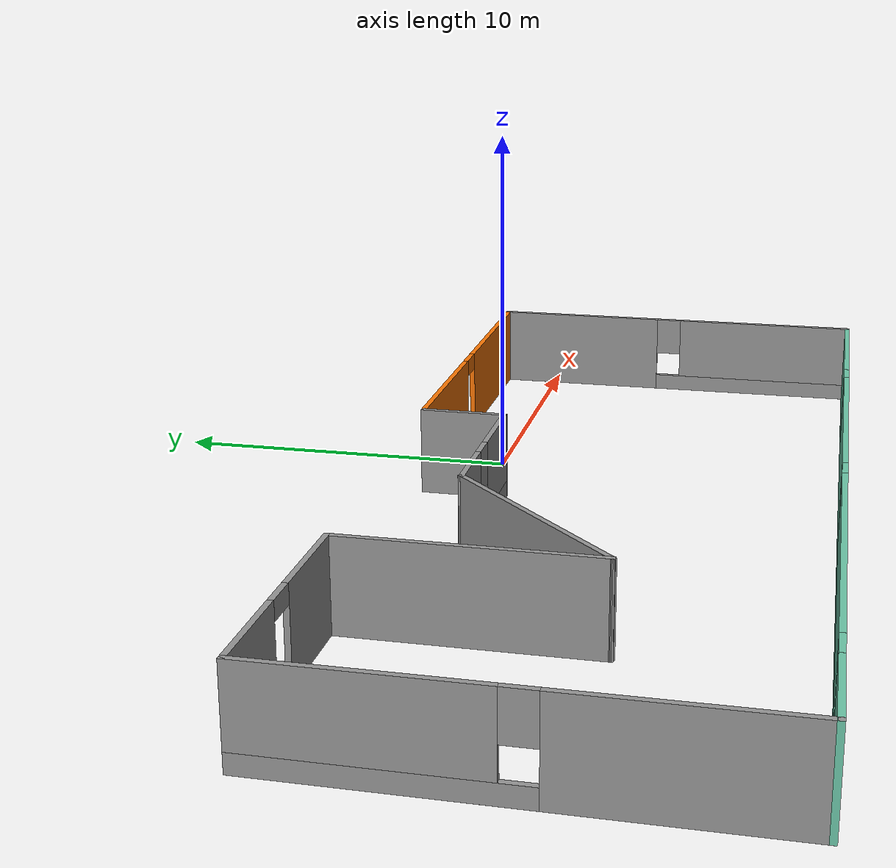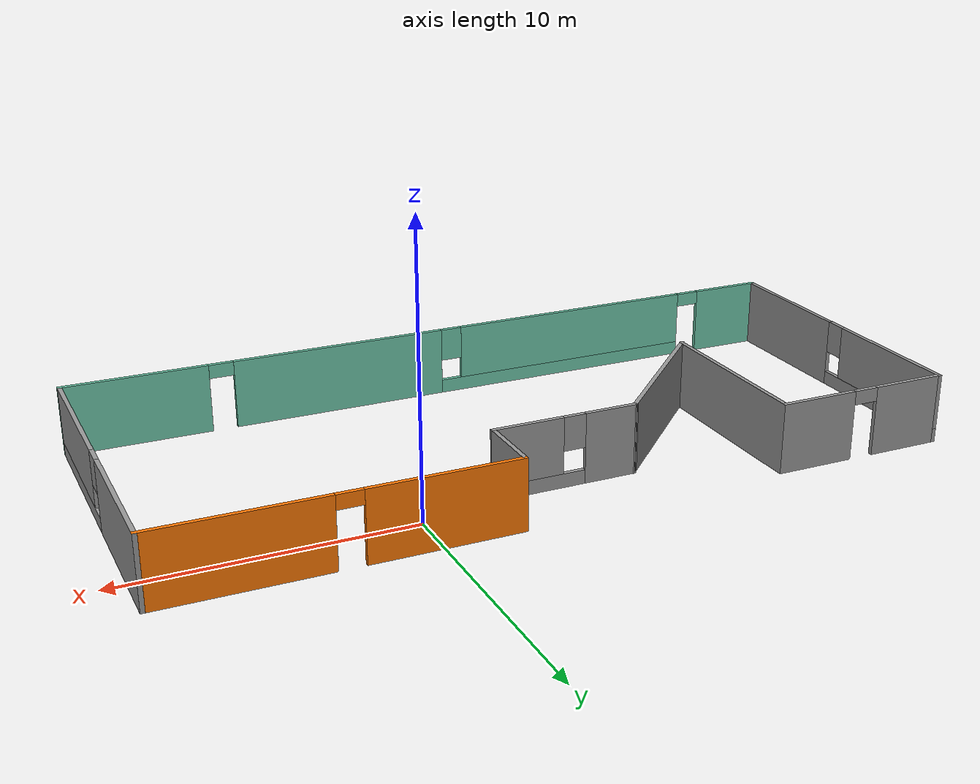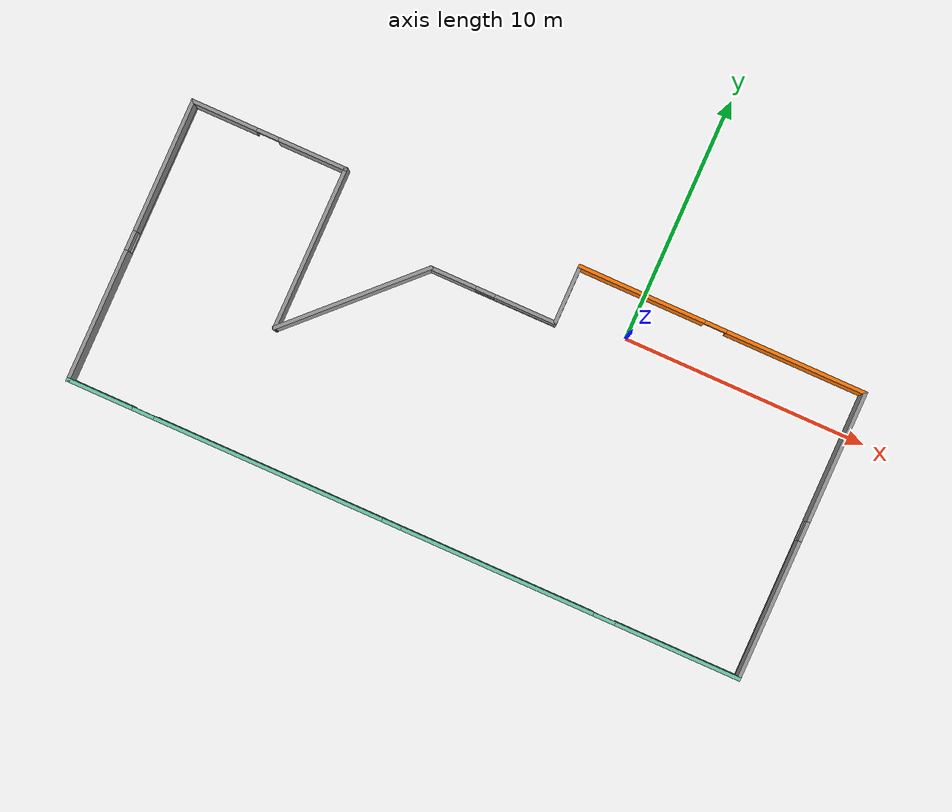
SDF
<?xml version='1.0'?>
<sdf version='1.6'>
  <model name='andrew_building'>
    <pose frame=''>-4.795 -4.205 0 0 -0 0</pose>
    <link name='Wall_0'>
      <collision name='Wall_0_Collision'>
        <geometry>
          <box>
            <size>2.5 0.15 2.5</size>
          </box>
        </geometry>
        <pose frame=''>0 0 1.25 0 -0 0</pose>
      </collision>
      <visual name='Wall_0_Visual'>
        <pose frame=''>0 0 1.25 0 -0 0</pose>
        <geometry>
          <box>
            <size>2.5 0.15 2.5</size>
          </box>
        </geometry>
        <material>
          <script>
            <uri>file://media/materials/scripts/gazebo.material</uri>
            <name>Gazebo/Grey</name>
          </script>
          <ambient>1 1 1 1</ambient>
        </material>
        <meta>
          <layer>0</layer>
        </meta>
      </visual>
      <pose frame=''>2.075 4.75 0 0 -0 1.5708</pose>
    </link>
    <link name='Wall_1'>
      <pose frame=''>8 5.925 0 0 -0 0</pose>
      <visual name='Wall_1_Visual_0'>
        <pose frame=''>-3.36563 0 1.25 0 -0 0</pose>
        <geometry>
          <box>
            <size>5.26874 0.15 2.5</size>
          </box>
        </geometry>
        <material>
          <script>
            <uri>file://media/materials/scripts/gazebo.material</uri>
            <name>Gazebo/Grey</name>
          </script>
          <ambient>0.996078 0.47451 0.0196078 1</ambient>
        </material>
        <meta>
          <layer>0</layer>
        </meta>
      </visual>
      <collision name='Wall_1_Collision_0'>
        <geometry>
          <box>
            <size>5.26874 0.15 2.5</size>
          </box>
        </geometry>
        <pose frame=''>-3.36563 0 1.25 0 -0 0</pose>
      </collision>
      <visual name='Wall_1_Visual_1'>
        <pose frame=''>3.08437 0 1.25 0 -0 0</pose>
        <geometry>
          <box>
            <size>5.83126 0.15 2.5</size>
          </box>
        </geometry>
        <material>
          <script>
            <uri>file://media/materials/scripts/gazebo.material</uri>
            <name>Gazebo/Grey</name>
          </script>
          <ambient>0.996078 0.47451 0.0196078 1</ambient>
        </material>
        <meta>
          <layer>0</layer>
        </meta>
      </visual>
      <collision name='Wall_1_Collision_1'>
        <geometry>
          <box>
            <size>5.83126 0.15 2.5</size>
          </box>
        </geometry>
        <pose frame=''>3.08437 0 1.25 0 -0 0</pose>
      </collision>
      <visual name='Wall_1_Visual_2'>
        <pose frame=''>-0.281258 0 2.25 0 -0 0</pose>
        <geometry>
          <box>
            <size>0.9 0.15 0.5</size>
          </box>
        </geometry>
        <material>
          <script>
            <uri>file://media/materials/scripts/gazebo.material</uri>
            <name>Gazebo/Grey</name>
          </script>
          <ambient>0.996078 0.47451 0.0196078 1</ambient>
        </material>
        <meta>
          <layer>0</layer>
        </meta>
      </visual>
      <collision name='Wall_1_Collision_2'>
        <geometry>
          <box>
            <size>0.9 0.15 0.5</size>
          </box>
        </geometry>
        <pose frame=''>-0.281258 0 2.25 0 -0 0</pose>
      </collision>
    </link>
    <link name='Wall_2'>
      <pose frame=''>13.925 0 0 0 0 -1.5708</pose>
      <visual name='Wall_2_Visual_0'>
        <pose frame=''>-3.28921 0 1.25 0 -0 0</pose>
        <geometry>
          <box>
            <size>5.42159 0.15 2.5</size>
          </box>
        </geometry>
        <material>
          <script>
            <uri>file://media/materials/scripts/gazebo.material</uri>
            <name>Gazebo/Grey</name>
          </script>
          <ambient>1 1 1 1</ambient>
        </material>
        <meta>
          <layer>0</layer>
        </meta>
      </visual>
      <collision name='Wall_2_Collision_0'>
        <geometry>
          <box>
            <size>5.42159 0.15 2.5</size>
          </box>
        </geometry>
        <pose frame=''>-3.28921 0 1.25 0 -0 0</pose>
      </collision>
      <visual name='Wall_2_Visual_1'>
        <pose frame=''>2.71079 0 0.25 0 -0 0</pose>
        <geometry>
          <box>
            <size>6.57841 0.15 0.5</size>
          </box>
        </geometry>
        <material>
          <script>
            <uri>file://media/materials/scripts/gazebo.material</uri>
            <name>Gazebo/Grey</name>
          </script>
          <ambient>1 1 1 1</ambient>
        </material>
        <meta>
          <layer>0</layer>
        </meta>
      </visual>
      <collision name='Wall_2_Collision_1'>
        <geometry>
          <box>
            <size>6.57841 0.15 0.5</size>
          </box>
        </geometry>
        <pose frame=''>2.71079 0 0.25 0 -0 0</pose>
      </collision>
      <visual name='Wall_2_Visual_2'>
        <pose frame=''>3.11079 0 1.5 0 -0 0</pose>
        <geometry>
          <box>
            <size>5.77841 0.15 2</size>
          </box>
        </geometry>
        <material>
          <script>
            <uri>file://media/materials/scripts/gazebo.material</uri>
            <name>Gazebo/Grey</name>
          </script>
          <ambient>1 1 1 1</ambient>
        </material>
        <meta>
          <layer>0</layer>
        </meta>
      </visual>
      <collision name='Wall_2_Collision_2'>
        <geometry>
          <box>
            <size>5.77841 0.15 2</size>
          </box>
        </geometry>
        <pose frame=''>3.11079 0 1.5 0 -0 0</pose>
      </collision>
      <visual name='Wall_2_Visual_3'>
        <pose frame=''>-0.178411 0 1.9 0 -0 0</pose>
        <geometry>
          <box>
            <size>0.8 0.15 1.2</size>
          </box>
        </geometry>
        <material>
          <script>
            <uri>file://media/materials/scripts/gazebo.material</uri>
            <name>Gazebo/Grey</name>
          </script>
          <ambient>1 1 1 1</ambient>
        </material>
        <meta>
          <layer>0</layer>
        </meta>
      </visual>
      <collision name='Wall_2_Collision_3'>
        <geometry>
          <box>
            <size>0.8 0.15 1.2</size>
          </box>
        </geometry>
        <pose frame=''>-0.178411 0 1.9 0 -0 0</pose>
      </collision>
    </link>
    <link name='Wall_3'>
      <pose frame=''>0 -5.925 0 0 -0 3.14159</pose>
      <visual name='Wall_3_Visual_0'>
        <pose frame=''>-11.397 0 1.25 0 -0 0</pose>
        <geometry>
          <box>
            <size>5.2061 0.15 2.5</size>
          </box>
        </geometry>
        <material>
          <script>
            <uri>file://media/materials/scripts/gazebo.material</uri>
            <name>Gazebo/Grey</name>
          </script>
          <ambient>0.435294 0.796078 0.67451 1</ambient>
        </material>
        <meta>
          <layer>0</layer>
        </meta>
      </visual>
      <collision name='Wall_3_Collision_0'>
        <geometry>
          <box>
            <size>5.2061 0.15 2.5</size>
          </box>
        </geometry>
        <pose frame=''>-11.397 0 1.25 0 -0 0</pose>
      </collision>
      <visual name='Wall_3_Visual_1'>
        <pose frame=''>-3.90678 0 1.25 0 -0 0</pose>
        <geometry>
          <box>
            <size>7.97424 0.15 2.5</size>
          </box>
        </geometry>
        <material>
          <script>
            <uri>file://media/materials/scripts/gazebo.material</uri>
            <name>Gazebo/Grey</name>
          </script>
          <ambient>0.435294 0.796078 0.67451 1</ambient>
        </material>
        <meta>
          <layer>0</layer>
        </meta>
      </visual>
      <collision name='Wall_3_Collision_1'>
        <geometry>
          <box>
            <size>7.97424 0.15 2.5</size>
          </box>
        </geometry>
        <pose frame=''>-3.90678 0 1.25 0 -0 0</pose>
      </collision>
      <visual name='Wall_3_Visual_2'>
        <pose frame=''>12.6306 0 1.25 0 -0 0</pose>
        <geometry>
          <box>
            <size>2.73885 0.15 2.5</size>
          </box>
        </geometry>
        <material>
          <script>
            <uri>file://media/materials/scripts/gazebo.material</uri>
            <name>Gazebo/Grey</name>
          </script>
          <ambient>0.435294 0.796078 0.67451 1</ambient>
        </material>
        <meta>
          <layer>0</layer>
        </meta>
      </visual>
      <collision name='Wall_3_Collision_2'>
        <geometry>
          <box>
            <size>2.73885 0.15 2.5</size>
          </box>
        </geometry>
        <pose frame=''>12.6306 0 1.25 0 -0 0</pose>
      </collision>
      <visual name='Wall_3_Visual_3'>
        <pose frame=''>5.22074 0 0.25 0 -0 0</pose>
        <geometry>
          <box>
            <size>10.2808 0.15 0.5</size>
          </box>
        </geometry>
        <material>
          <script>
            <uri>file://media/materials/scripts/gazebo.material</uri>
            <name>Gazebo/Grey</name>
          </script>
          <ambient>0.435294 0.796078 0.67451 1</ambient>
        </material>
        <meta>
          <layer>0</layer>
        </meta>
      </visual>
      <collision name='Wall_3_Collision_3'>
        <geometry>
          <box>
            <size>10.2808 0.15 0.5</size>
          </box>
        </geometry>
        <pose frame=''>5.22074 0 0.25 0 -0 0</pose>
      </collision>
      <visual name='Wall_3_Visual_4'>
        <pose frame=''>5.62074 0 1.5 0 -0 0</pose>
        <geometry>
          <box>
            <size>9.48081 0.15 2</size>
          </box>
        </geometry>
        <material>
          <script>
            <uri>file://media/materials/scripts/gazebo.material</uri>
            <name>Gazebo/Grey</name>
          </script>
          <ambient>0.435294 0.796078 0.67451 1</ambient>
        </material>
        <meta>
          <layer>0</layer>
        </meta>
      </visual>
      <collision name='Wall_3_Collision_4'>
        <geometry>
          <box>
            <size>9.48081 0.15 2</size>
          </box>
        </geometry>
        <pose frame=''>5.62074 0 1.5 0 -0 0</pose>
      </collision>
      <visual name='Wall_3_Visual_5'>
        <pose frame=''>0.480337 0 1.9 0 -0 0</pose>
        <geometry>
          <box>
            <size>0.8 0.15 1.2</size>
          </box>
        </geometry>
        <material>
          <script>
            <uri>file://media/materials/scripts/gazebo.material</uri>
            <name>Gazebo/Grey</name>
          </script>
          <ambient>0.435294 0.796078 0.67451 1</ambient>
        </material>
        <meta>
          <layer>0</layer>
        </meta>
      </visual>
      <collision name='Wall_3_Collision_5'>
        <geometry>
          <box>
            <size>0.8 0.15 1.2</size>
          </box>
        </geometry>
        <pose frame=''>0.480337 0 1.9 0 -0 0</pose>
      </collision>
      <visual name='Wall_3_Visual_6'>
        <pose frame=''>-8.3439 0 2.25 0 -0 0</pose>
        <geometry>
          <box>
            <size>0.9 0.15 0.5</size>
          </box>
        </geometry>
        <material>
          <script>
            <uri>file://media/materials/scripts/gazebo.material</uri>
            <name>Gazebo/Grey</name>
          </script>
          <ambient>0.435294 0.796078 0.67451 1</ambient>
        </material>
        <meta>
          <layer>0</layer>
        </meta>
      </visual>
      <collision name='Wall_3_Collision_6'>
        <geometry>
          <box>
            <size>0.9 0.15 0.5</size>
          </box>
        </geometry>
        <pose frame=''>-8.3439 0 2.25 0 -0 0</pose>
      </collision>
      <visual name='Wall_3_Visual_7'>
        <pose frame=''>10.8112 0 2.25 0 -0 0</pose>
        <geometry>
          <box>
            <size>0.9 0.15 0.5</size>
          </box>
        </geometry>
        <material>
          <script>
            <uri>file://media/materials/scripts/gazebo.material</uri>
            <name>Gazebo/Grey</name>
          </script>
          <ambient>0.435294 0.796078 0.67451 1</ambient>
        </material>
        <meta>
          <layer>0</layer>
        </meta>
      </visual>
      <collision name='Wall_3_Collision_7'>
        <geometry>
          <box>
            <size>0.9 0.15 0.5</size>
          </box>
        </geometry>
        <pose frame=''>10.8112 0 2.25 0 -0 0</pose>
      </collision>
    </link>
    <link name='Wall_4'>
      <pose frame=''>-13.925 -0.125 0 0 -0 1.5708</pose>
      <visual name='Wall_4_Visual_0'>
        <pose frame=''>-3.13823 0 1.25 0 -0 0</pose>
        <geometry>
          <box>
            <size>5.47354 0.15 2.5</size>
          </box>
        </geometry>
        <material>
          <script>
            <uri>file://media/materials/scripts/gazebo.material</uri>
            <name>Gazebo/Grey</name>
          </script>
          <ambient>1 1 1 1</ambient>
        </material>
        <meta>
          <layer>0</layer>
        </meta>
      </visual>
      <collision name='Wall_4_Collision_0'>
        <geometry>
          <box>
            <size>5.47354 0.15 2.5</size>
          </box>
        </geometry>
        <pose frame=''>-3.13823 0 1.25 0 -0 0</pose>
      </collision>
      <visual name='Wall_4_Visual_1'>
        <pose frame=''>2.73677 0 0.25 0 -0 0</pose>
        <geometry>
          <box>
            <size>6.27646 0.15 0.5</size>
          </box>
        </geometry>
        <material>
          <script>
            <uri>file://media/materials/scripts/gazebo.material</uri>
            <name>Gazebo/Grey</name>
          </script>
          <ambient>1 1 1 1</ambient>
        </material>
        <meta>
          <layer>0</layer>
        </meta>
      </visual>
      <collision name='Wall_4_Collision_1'>
        <geometry>
          <box>
            <size>6.27646 0.15 0.5</size>
          </box>
        </geometry>
        <pose frame=''>2.73677 0 0.25 0 -0 0</pose>
      </collision>
      <visual name='Wall_4_Visual_2'>
        <pose frame=''>3.13677 0 1.5 0 -0 0</pose>
        <geometry>
          <box>
            <size>5.47646 0.15 2</size>
          </box>
        </geometry>
        <material>
          <script>
            <uri>file://media/materials/scripts/gazebo.material</uri>
            <name>Gazebo/Grey</name>
          </script>
          <ambient>1 1 1 1</ambient>
        </material>
        <meta>
          <layer>0</layer>
        </meta>
      </visual>
      <collision name='Wall_4_Collision_2'>
        <geometry>
          <box>
            <size>5.47646 0.15 2</size>
          </box>
        </geometry>
        <pose frame=''>3.13677 0 1.5 0 -0 0</pose>
      </collision>
      <visual name='Wall_4_Visual_3'>
        <pose frame=''>-0.001456 0 1.9 0 -0 0</pose>
        <geometry>
          <box>
            <size>0.8 0.15 1.2</size>
          </box>
        </geometry>
        <material>
          <script>
            <uri>file://media/materials/scripts/gazebo.material</uri>
            <name>Gazebo/Grey</name>
          </script>
          <ambient>1 1 1 1</ambient>
        </material>
        <meta>
          <layer>0</layer>
        </meta>
      </visual>
      <collision name='Wall_4_Collision_3'>
        <geometry>
          <box>
            <size>0.8 0.15 1.2</size>
          </box>
        </geometry>
        <pose frame=''>-0.001456 0 1.9 0 -0 0</pose>
      </collision>
    </link>
    <link name='Wall_5'>
      <pose frame=''>-10.75 5.675 0 0 -0 0</pose>
      <visual name='Wall_5_Visual_0'>
        <pose frame=''>-1.87996 0 1.25 0 -0 0</pose>
        <geometry>
          <box>
            <size>2.74009 0.15 2.5</size>
          </box>
        </geometry>
        <material>
          <script>
            <uri>file://media/materials/scripts/gazebo.material</uri>
            <name>Gazebo/Grey</name>
          </script>
          <ambient>1 1 1 1</ambient>
        </material>
        <meta>
          <layer>0</layer>
        </meta>
      </visual>
      <collision name='Wall_5_Collision_0'>
        <geometry>
          <box>
            <size>2.74009 0.15 2.5</size>
          </box>
        </geometry>
        <pose frame=''>-1.87996 0 1.25 0 -0 0</pose>
      </collision>
      <visual name='Wall_5_Visual_1'>
        <pose frame=''>1.82004 0 1.25 0 -0 0</pose>
        <geometry>
          <box>
            <size>2.85991 0.15 2.5</size>
          </box>
        </geometry>
        <material>
          <script>
            <uri>file://media/materials/scripts/gazebo.material</uri>
            <name>Gazebo/Grey</name>
          </script>
          <ambient>1 1 1 1</ambient>
        </material>
        <meta>
          <layer>0</layer>
        </meta>
      </visual>
      <collision name='Wall_5_Collision_1'>
        <geometry>
          <box>
            <size>2.85991 0.15 2.5</size>
          </box>
        </geometry>
        <pose frame=''>1.82004 0 1.25 0 -0 0</pose>
      </collision>
      <visual name='Wall_5_Visual_2'>
        <pose frame=''>-0.059913 0 2.25 0 -0 0</pose>
        <geometry>
          <box>
            <size>0.9 0.15 0.5</size>
          </box>
        </geometry>
        <material>
          <script>
            <uri>file://media/materials/scripts/gazebo.material</uri>
            <name>Gazebo/Grey</name>
          </script>
          <ambient>1 1 1 1</ambient>
        </material>
        <meta>
          <layer>0</layer>
        </meta>
      </visual>
      <collision name='Wall_5_Collision_2'>
        <geometry>
          <box>
            <size>0.9 0.15 0.5</size>
          </box>
        </geometry>
        <pose frame=''>-0.059913 0 2.25 0 -0 0</pose>
      </collision>
    </link>
    <link name='Wall_6'>
      <collision name='Wall_6_Collision'>
        <geometry>
          <box>
            <size>6.75 0.15 2.5</size>
          </box>
        </geometry>
        <pose frame=''>0 0 1.25 0 -0 0</pose>
      </collision>
      <visual name='Wall_6_Visual'>
        <pose frame=''>0 0 1.25 0 -0 0</pose>
        <geometry>
          <box>
            <size>6.75 0.15 2.5</size>
          </box>
        </geometry>
        <material>
          <script>
            <uri>file://media/materials/scripts/gazebo.material</uri>
            <name>Gazebo/Grey</name>
          </script>
          <ambient>1 1 1 1</ambient>
        </material>
        <meta>
          <layer>0</layer>
        </meta>
      </visual>
      <pose frame=''>-7.575 2.375 0 0 0 -1.5708</pose>
    </link>
    <link name='Wall_7'>
      <collision name='Wall_7_Collision'>
        <geometry>
          <box>
            <size>6.5 0.15 2.5</size>
          </box>
        </geometry>
        <pose frame=''>0 0 1.25 0 -0 0</pose>
      </collision>
      <visual name='Wall_7_Visual'>
        <pose frame=''>0 0 1.25 0 -0 0</pose>
        <geometry>
          <box>
            <size>6.5 0.15 2.5</size>
          </box>
        </geometry>
        <material>
          <script>
            <uri>file://media/materials/scripts/gazebo.material</uri>
            <name>Gazebo/Grey</name>
          </script>
          <ambient>1 1 1 1</ambient>
        </material>
        <meta>
          <layer>0</layer>
        </meta>
      </visual>
      <pose frame=''>-5.32994 1.32006 0 0 -0 0.785398</pose>
    </link>
    <link name='Wall_8'>
      <pose frame=''>-0.504936 3.57006 0 0 -0 0.001913</pose>
      <visual name='Wall_8_Visual_0'>
        <pose frame=''>-1.68365 0 1.25 0 -0 0</pose>
        <geometry>
          <box>
            <size>1.94258 0.15 2.5</size>
          </box>
        </geometry>
        <material>
          <script>
            <uri>file://media/materials/scripts/gazebo.material</uri>
            <name>Gazebo/Grey</name>
          </script>
          <ambient>1 1 1 1</ambient>
        </material>
        <meta>
          <layer>0</layer>
        </meta>
      </visual>
      <collision name='Wall_8_Collision_0'>
        <geometry>
          <box>
            <size>1.94258 0.15 2.5</size>
          </box>
        </geometry>
        <pose frame=''>-1.68365 0 1.25 0 -0 0</pose>
      </collision>
      <visual name='Wall_8_Visual_1'>
        <pose frame=''>0.971291 0 0.25 0 -0 0</pose>
        <geometry>
          <box>
            <size>3.3673 0.15 0.5</size>
          </box>
        </geometry>
        <material>
          <script>
            <uri>file://media/materials/scripts/gazebo.material</uri>
            <name>Gazebo/Grey</name>
          </script>
          <ambient>1 1 1 1</ambient>
        </material>
        <meta>
          <layer>0</layer>
        </meta>
      </visual>
      <collision name='Wall_8_Collision_1'>
        <geometry>
          <box>
            <size>3.3673 0.15 0.5</size>
          </box>
        </geometry>
        <pose frame=''>0.971291 0 0.25 0 -0 0</pose>
      </collision>
      <visual name='Wall_8_Visual_2'>
        <pose frame=''>1.37129 0 1.5 0 -0 0</pose>
        <geometry>
          <box>
            <size>2.5673 0.15 2</size>
          </box>
        </geometry>
        <material>
          <script>
            <uri>file://media/materials/scripts/gazebo.material</uri>
            <name>Gazebo/Grey</name>
          </script>
          <ambient>1 1 1 1</ambient>
        </material>
        <meta>
          <layer>0</layer>
        </meta>
      </visual>
      <collision name='Wall_8_Collision_2'>
        <geometry>
          <box>
            <size>2.5673 0.15 2</size>
          </box>
        </geometry>
        <pose frame=''>1.37129 0 1.5 0 -0 0</pose>
      </collision>
      <visual name='Wall_8_Visual_3'>
        <pose frame=''>-0.312358 0 1.9 0 -0 0</pose>
        <geometry>
          <box>
            <size>0.8 0.15 1.2</size>
          </box>
        </geometry>
        <material>
          <script>
            <uri>file://media/materials/scripts/gazebo.material</uri>
            <name>Gazebo/Grey</name>
          </script>
          <ambient>1 1 1 1</ambient>
        </material>
        <meta>
          <layer>0</layer>
        </meta>
      </visual>
      <collision name='Wall_8_Collision_3'>
        <geometry>
          <box>
            <size>0.8 0.15 1.2</size>
          </box>
        </geometry>
        <pose frame=''>-0.312358 0 1.9 0 -0 0</pose>
      </collision>
    </link>
    <static>1</static>
  </model>
</sdf>
